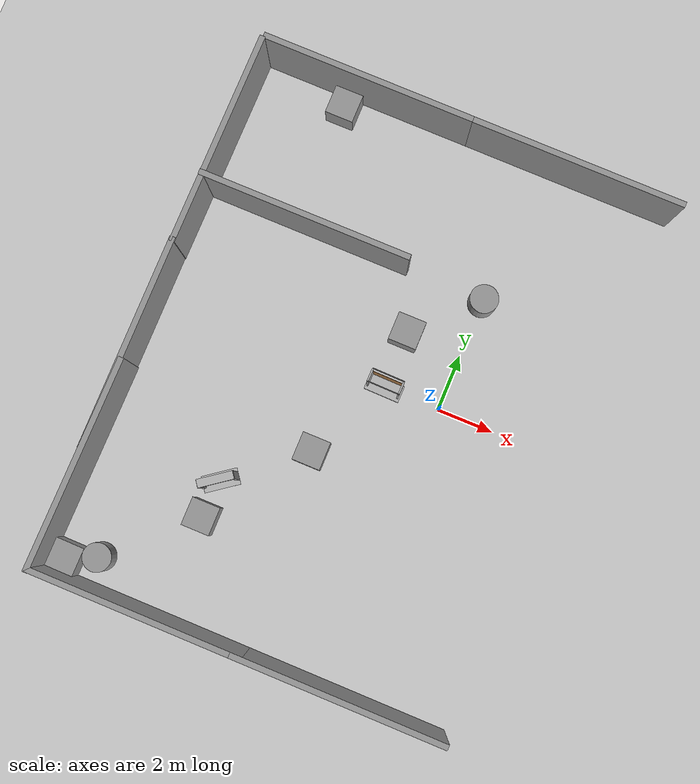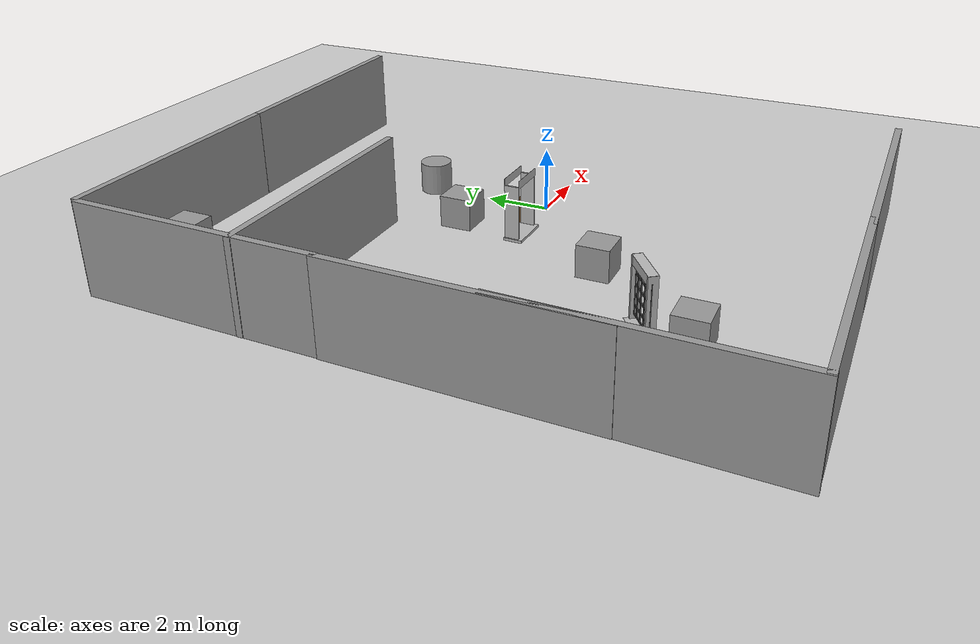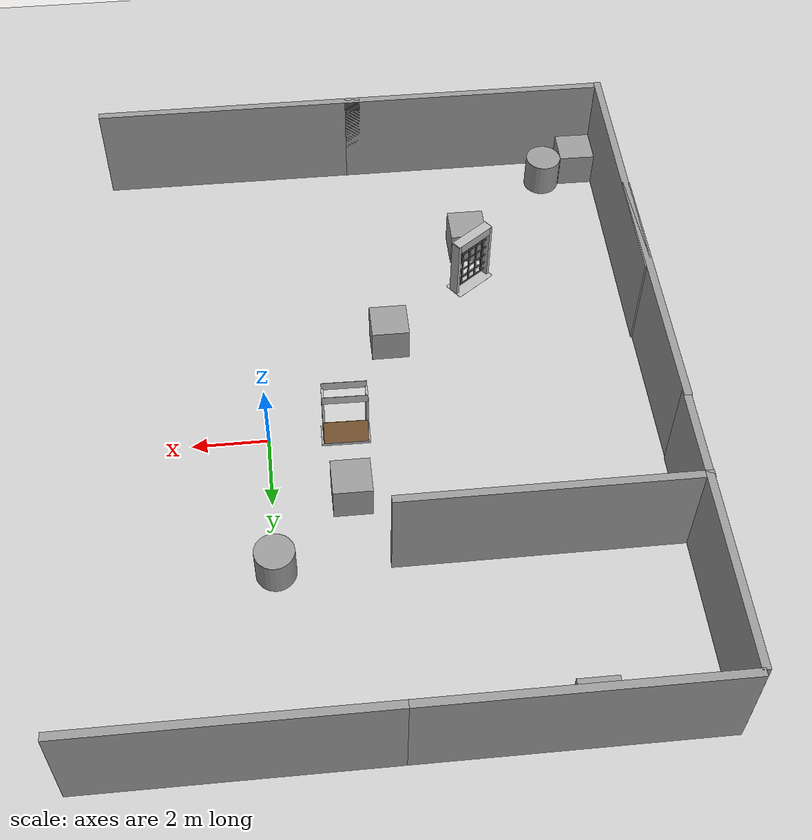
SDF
<sdf version="1.4">
 <world name="default">
  <model name="ground_plane">
   <static>1</static>
   <link name="link">
    <collision name="collision">
     <geometry><plane><normal>0 0 1</normal><size>100 100</size></plane></geometry>
     <surface><friction><ode><mu>100</mu><mu2>50</mu2></ode></friction></surface>
    </collision>
    <visual name="visual">
     <cast_shadows>0</cast_shadows>
     <geometry><plane><normal>0 0 1</normal><size>100 100</size></plane></geometry>
     <material>
      <script><uri>file://media/materials/scripts/gazebo.material</uri><name>Gazebo/Grey</name></script>
     </material>
    </visual>
    <velocity_decay><linear>0</linear><angular>0</angular></velocity_decay>
   </link>
  </model>
  <model name="grey_wall">
   <static>1</static>
   <link name="link">
    <pose>0 0 1.4 0 -0 0</pose>
    <collision name="collision"><geometry><box><size>7.5 0.2 2.8</size></box></geometry></collision>
    <visual name="visual">
     <cast_shadows>0</cast_shadows>
     <geometry><box><size>7.5 0.2 2.8</size></box></geometry>
     <material>
      <script>
       <uri>model://grey_wall/materials/scripts</uri>
       <uri>model://grey_wall/materials/textures</uri>
       <name>vrc/grey_wall</name>
      </script>
     </material>
    </visual>
    <velocity_decay><linear>0</linear><angular>0</angular></velocity_decay>
   </link>
   <pose>-6.37486 9.06322 0 0 -0 0</pose>
  </model>
  <model name="grey_wall_0">
   <static>1</static>
   <link name="link">
    <pose>0 0 1.4 0 -0 0</pose>
    <collision name="collision"><geometry><box><size>7.5 0.2 2.8</size></box></geometry></collision>
    <visual name="visual">
     <cast_shadows>0</cast_shadows>
     <geometry><box><size>7.5 0.2 2.8</size></box></geometry>
     <material>
      <script>
       <uri>model://grey_wall/materials/scripts</uri>
       <uri>model://grey_wall/materials/textures</uri>
       <name>vrc/grey_wall</name>
      </script>
     </material>
    </visual>
    <velocity_decay><linear>0</linear><angular>0</angular></velocity_decay>
   </link>
   <pose>1.12463 9.06218 0 0 -0 0</pose>
  </model>
  <model name="grey_wall_2">
   <static>1</static>
   <link name="link">
    <pose>0 0 1.4 0 -0 0</pose>
    <collision name="collision"><geometry><box><size>7.5 0.2 2.8</size></box></geometry></collision>
    <visual name="visual">
     <cast_shadows>0</cast_shadows>
     <geometry><box><size>7.5 0.2 2.8</size></box></geometry>
     <material>
      <script>
       <uri>model://grey_wall/materials/scripts</uri>
       <uri>model://grey_wall/materials/textures</uri>
       <name>vrc/grey_wall</name>
      </script>
     </material>
    </visual>
    <velocity_decay><linear>0</linear><angular>0</angular></velocity_decay>
   </link>
   <pose>-6.57172 -10 0 0 -0 0</pose>
  </model>
  <model name="grey_wall_3">
   <static>1</static>
   <link name="link">
    <pose>0 0 1.4 0 -0 0</pose>
    <collision name="collision"><geometry><box><size>7.5 0.2 2.8</size></box></geometry></collision>
    <visual name="visual">
     <cast_shadows>0</cast_shadows>
     <geometry><box><size>7.5 0.2 2.8</size></box></geometry>
     <material>
      <script>
       <uri>model://grey_wall/materials/scripts</uri>
       <uri>model://grey_wall/materials/textures</uri>
       <name>vrc/grey_wall</name>
      </script>
     </material>
    </visual>
    <velocity_decay><linear>0</linear><angular>0</angular></velocity_decay>
   </link>
   <pose>0.502464 -10 0 0 -0 0</pose>
  </model>
  <model name="grey_wall_8">
   <static>1</static>
   <link name="link">
    <pose>0 0 1.4 0 -0 0</pose>
    <collision name="collision"><geometry><box><size>7.5 0.2 2.8</size></box></geometry></collision>
    <visual name="visual">
     <cast_shadows>0</cast_shadows>
     <geometry><box><size>7.5 0.2 2.8</size></box></geometry>
     <material>
      <script>
       <uri>model://grey_wall/materials/scripts</uri>
       <uri>model://grey_wall/materials/textures</uri>
       <name>vrc/grey_wall</name>
      </script>
     </material>
    </visual>
    <velocity_decay><linear>0</linear><angular>0</angular></velocity_decay>
   </link>
   <pose>-10.1642 5.26629 0 0 0 -1.57839</pose>
  </model>
  <model name="grey_wall_9">
   <static>1</static>
   <link name="link">
    <pose>0 0 1.4 0 -0 0</pose>
    <collision name="collision"><geometry><box><size>7.5 0.2 2.8</size></box></geometry></collision>
    <visual name="visual">
     <cast_shadows>0</cast_shadows>
     <geometry><box><size>7.5 0.2 2.8</size></box></geometry>
     <material>
      <script>
       <uri>model://grey_wall/materials/scripts</uri>
       <uri>model://grey_wall/materials/textures</uri>
       <name>vrc/grey_wall</name>
      </script>
     </material>
    </visual>
    <velocity_decay><linear>0</linear><angular>0</angular></velocity_decay>
   </link>
   <pose>-10.2248 -2.07732 0 0 0 -1.57362</pose>
  </model>
  <model name="grey_wall_10">
   <static>1</static>
   <link name="link">
    <pose>0 0 1.4 0 -0 0</pose>
    <collision name="collision"><geometry><box><size>7.5 0.2 2.8</size></box></geometry></collision>
    <visual name="visual">
     <cast_shadows>0</cast_shadows>
     <geometry><box><size>7.5 0.2 2.8</size></box></geometry>
     <material>
      <script>
       <uri>model://grey_wall/materials/scripts</uri>
       <uri>model://grey_wall/materials/textures</uri>
       <name>vrc/grey_wall</name>
      </script>
     </material>
    </visual>
    <velocity_decay><linear>0</linear><angular>0</angular></velocity_decay>
   </link>
   <pose>-10.2268 -6.36026 -0 0 0 -1.58184</pose>
  </model>
  <model name="grey_wall_11">
   <static>1</static>
   <link name="link">
    <pose>0 0 1.4 0 -0 0</pose>
    <collision name="collision"><geometry><box><size>7.5 0.2 2.8</size></box></geometry></collision>
    <visual name="visual">
     <cast_shadows>0</cast_shadows>
     <geometry><box><size>7.5 0.2 2.8</size></box></geometry>
     <material>
      <script>
       <uri>model://grey_wall/materials/scripts</uri>
       <uri>model://grey_wall/materials/textures</uri>
       <name>vrc/grey_wall</name>
      </script>
     </material>
    </visual>
    <velocity_decay><linear>0</linear><angular>0</angular></velocity_decay>
   </link>
   <pose>-6.53777 4 0 0 -0 0</pose>
  </model>
  <model name="frc2016_drawbridge">
   <link name="base">
    <inertial>
     <mass>10</mass>
     <pose>0 0 1 0 -0 0</pose>
     <inertia><ixx>3.64907</ixx><ixy>0</ixy><ixz>0</ixz><iyy>4.67075</iyy><iyz>0</iyz><izz>1.66649</izz></inertia>
    </inertial>
    <visual name="platform">
     <pose>0 0 0.0425 0 -0 0</pose>
     <geometry><box><size>1.27 0.5969 0.085</size></box></geometry>
    </visual>
    <collision name="platform">
     <pose>0 0 0.0425 0 -0 0</pose>
     <geometry><box><size>1.27 0.5969 0.085</size></box></geometry>
    </collision>
    <visual name="right_wall">
     <pose>0.55879 0.04444 0.889 0 -0 0</pose>
     <geometry><box><size>0.05715 0.45698 1.77165</size></box></geometry>
    </visual>
    <collision name="right_wall">
     <pose>0.55879 0.04444 0.889 0 -0 0</pose>
     <geometry><box><size>0.05715 0.45698 1.77165</size></box></geometry>
    </collision>
    <visual name="left_wall">
     <pose>-0.55879 0.04444 0.889 0 -0 0</pose>
     <geometry><box><size>0.05715 0.45698 1.77165</size></box></geometry>
    </visual>
    <collision name="left_wall">
     <pose>-0.55879 0.04444 0.889 0 -0 0</pose>
     <geometry><box><size>0.05715 0.45698 1.77165</size></box></geometry>
    </collision>
    <visual name="front_upper_wall">
     <pose>0 0.27611 1.84286 0 -0 0</pose>
     <geometry><box><size>1.1557 0.006347 0.254</size></box></geometry>
    </visual>
    <collision name="front_upper_wall">
     <pose>0 0.27611 1.84286 0 -0 0</pose>
     <geometry><box><size>1.1557 0.006347 0.254</size></box></geometry>
    </collision>
    <visual name="back_upper_wall">
     <pose>0 -0.18722 1.84286 0 -0 0</pose>
     <geometry><box><size>1.1557 0.006347 0.254</size></box></geometry>
    </visual>
    <collision name="back_upper_wall">
     <pose>0 -0.18722 1.84286 0 -0 0</pose>
     <geometry><box><size>1.1557 0.006347 0.254</size></box></geometry>
    </collision>
    <velocity_decay><linear>0</linear><angular>0</angular></velocity_decay>
   </link>
   <link name="bridge">
    <pose>0 0.28245 0.50577 0 -0 0</pose>
    <inertial>
     <mass>2</mass>
     <pose>0 -0.28245 -0.50577 0 -0 0</pose>
     <inertia>
      <ixx>0.139361</ixx>
      <ixy>0</ixy>
      <ixz>0</ixz>
      <iyy>0.357088</iyy>
      <iyz>0</iyz>
      <izz>0.217741</izz>
     </inertia>
    </inertial>
    <visual name="visual">
     <geometry><box><size>1.14298 0.006347 0.9144</size></box></geometry>
     <material><script><name>Gazebo/WoodFloor</name><uri>__default__</uri></script></material>
    </visual>
    <collision name="collision"><geometry><box><size>1.14298 0.006347 0.9144</size></box></geometry></collision>
    <velocity_decay><linear>0</linear><angular>0</angular></velocity_decay>
   </link>
   <joint name="bridge_joint" type="revolute">
    <pose>0 0 -0.4172 0 -0 0</pose>
    <parent>base</parent>
    <child>bridge</child>
    <axis><xyz>1 0 0</xyz><limit><lower>-2</lower><upper>0</upper></limit></axis>
   </joint>
   <pose>-2.00157 -0.002943 -4e-06 -3e-06 4e-06 -0.01347</pose>
   <static>0</static>
  </model>
  <model name="frc2016_portcullis">
   <link name="base">
    <inertial>
     <mass>50</mass>
     <pose>0 0 1.02941 0 -0 0</pose>
     <inertia><ixx>3.81711</ixx><ixy>0</ixy><ixz>0</ixz><iyy>4.87698</iyy><iyz>0</iyz><izz>1.6283</izz></inertia>
    </inertial>
    <visual name="platform">
     <pose>0 0 0.07284 0 -0 0</pose>
     <geometry><box><size>1.27 0.5842 0.003175</size></box></geometry>
    </visual>
    <collision name="platform">
     <pose>0 0 0.07284 0 -0 0</pose>
     <geometry><box><size>1.27 0.5842 0.003175</size></box></geometry>
    </collision>
    <visual name="left_column">
     <pose>0.59284 0 0.99042 0 -0 0</pose>
     <geometry><box><size>0.08375 0.28575 1.83198</size></box></geometry>
    </visual>
    <collision name="left_column">
     <pose>0.59284 0 0.99042 0 -0 0</pose>
     <geometry><box><size>0.08375 0.28575 1.83198</size></box></geometry>
    </collision>
    <visual name="right_column">
     <pose>-0.57759 0 0.99042 0 -0 0</pose>
     <geometry><box><size>0.08375 0.28575 1.83198</size></box></geometry>
    </visual>
    <collision name="right_column">
     <pose>-0.57759 0 0.99042 0 -0 0</pose>
     <geometry><box><size>0.08375 0.28575 1.83198</size></box></geometry>
    </collision>
    <visual name="top">
     <pose>-0.00034 0 1.77722 0 -0 0</pose>
     <geometry><box><size>1.22962 0.28575 0.26657</size></box></geometry>
    </visual>
    <collision name="top">
     <pose>-0.00034 0 1.77722 0 -0 0</pose>
     <geometry><box><size>1.22962 0.28575 0.26657</size></box></geometry>
    </collision>
    <visual name="castor1">
     <pose>-0.45651 -0.16234 0.03272 0 -0 0</pose>
     <geometry><sphere><radius>0.03272</radius></sphere></geometry>
    </visual>
    <collision name="castor1">
     <pose>-0.45651 -0.16234 0.03272 0 -0 0</pose>
     <geometry><sphere><radius>0.03272</radius></sphere></geometry>
    </collision>
    <visual name="castor2">
     <pose>-0.27883 0.21836 0.03272 0 -0 0</pose>
     <geometry><sphere><radius>0.03272</radius></sphere></geometry>
    </visual>
    <collision name="castor2">
     <pose>-0.27883 0.21836 0.03272 0 -0 0</pose>
     <geometry><sphere><radius>0.03272</radius></sphere></geometry>
    </collision>
    <visual name="castor3">
     <pose>0.28083 0.21906 0.03272 0 -0 0</pose>
     <geometry><sphere><radius>0.03272</radius></sphere></geometry>
    </visual>
    <collision name="castor3">
     <pose>0.28083 0.21906 0.03272 0 -0 0</pose>
     <geometry><sphere><radius>0.03272</radius></sphere></geometry>
    </collision>
    <visual name="castor4">
     <pose>0.45871 -0.16186 0.03272 0 -0 0</pose>
     <geometry><sphere><radius>0.03272</radius></sphere></geometry>
    </visual>
    <collision name="castor4">
     <pose>0.45871 -0.16186 0.03272 0 -0 0</pose>
     <geometry><sphere><radius>0.03272</radius></sphere></geometry>
    </collision>
    <velocity_decay><linear>0</linear><angular>0</angular></velocity_decay>
   </link>
   <link name="gate">
    <pose>-0.0287 0.02885 0.93327 0 -0 0</pose>
    <inertial>
     <mass>2</mass>
     <inertia><ixx>3.81711</ixx><ixy>0</ixy><ixz>0</ixz><iyy>4.87698</iyy><iyz>0</iyz><izz>1.6283</izz></inertia>
    </inertial>
    <collision name="collision"><geometry><box><size>1.1938 0.02496 1.45732</size></box></geometry></collision>
    <visual name="horz_1">
     <pose>0 0 -0.70326 0 -0 0</pose>
     <geometry><box><size>1.1938 0.02496 0.0508</size></box></geometry>
     <material><ambient>0.4 0.4 0.4 1</ambient><diffuse>0.4 0.4 0.4 1</diffuse></material>
    </visual>
    <visual name="horz_2">
     <pose>0 0 -0.44926 0 -0 0</pose>
     <geometry><box><size>1.1938 0.02496 0.0508</size></box></geometry>
     <material><ambient>0.4 0.4 0.4 1</ambient><diffuse>0.4 0.4 0.4 1</diffuse></material>
    </visual>
    <visual name="horz_3">
     <pose>0 0 -0.14517 0 -0 0</pose>
     <geometry><box><size>1.1938 0.02496 0.0508</size></box></geometry>
     <material><ambient>0.4 0.4 0.4 1</ambient><diffuse>0.4 0.4 0.4 1</diffuse></material>
    </visual>
    <visual name="horz_4">
     <pose>0 0 0.16034 0 -0 0</pose>
     <geometry><box><size>1.1938 0.02496 0.0508</size></box></geometry>
     <material><ambient>0.4 0.4 0.4 1</ambient><diffuse>0.4 0.4 0.4 1</diffuse></material>
    </visual>
    <visual name="horz_5">
     <pose>0 0 0.46514 0 -0 0</pose>
     <geometry><box><size>1.1938 0.02496 0.0508</size></box></geometry>
     <material><ambient>0.4 0.4 0.4 1</ambient><diffuse>0.4 0.4 0.4 1</diffuse></material>
    </visual>
    <visual name="horz_6">
     <pose>0 0 0.72994 0 -0 0</pose>
     <geometry><box><size>1.1938 0.02496 0.0508</size></box></geometry>
     <material><ambient>0.4 0.4 0.4 1</ambient><diffuse>0.4 0.4 0.4 1</diffuse></material>
    </visual>
    <visual name="vert_1">
     <pose>-0.58448 0 0 0 -0 0</pose>
     <geometry><box><size>0.02495 0.02496 1.45732</size></box></geometry>
     <material><ambient>0.4 0.4 0.4 1</ambient><diffuse>0.4 0.4 0.4 1</diffuse></material>
    </visual>
    <visual name="vert_2">
     <pose>-0.38128 0 0 0 -0 0</pose>
     <geometry><box><size>0.0508 0.02496 1.45732</size></box></geometry>
     <material><ambient>0.4 0.4 0.4 1</ambient><diffuse>0.4 0.4 0.4 1</diffuse></material>
    </visual>
    <visual name="vert_3">
     <pose>-0.12728 0 0 0 -0 0</pose>
     <geometry><box><size>0.0508 0.02496 1.45732</size></box></geometry>
     <material><ambient>0.4 0.4 0.4 1</ambient><diffuse>0.4 0.4 0.4 1</diffuse></material>
    </visual>
    <visual name="vert_4">
     <pose>0.12672 0 0 0 -0 0</pose>
     <geometry><box><size>0.0508 0.02496 1.45732</size></box></geometry>
     <material><ambient>0.4 0.4 0.4 1</ambient><diffuse>0.4 0.4 0.4 1</diffuse></material>
    </visual>
    <visual name="vert_5">
     <pose>0.38072 0 0 0 -0 0</pose>
     <geometry><box><size>0.0508 0.02496 1.45732</size></box></geometry>
     <material><ambient>0.4 0.4 0.4 1</ambient><diffuse>0.4 0.4 0.4 1</diffuse></material>
    </visual>
    <visual name="vert_6">
     <pose>0.58392 0 0 0 -0 0</pose>
     <geometry><box><size>0.02495 0.02496 1.45732</size></box></geometry>
     <material><ambient>0.4 0.4 0.4 1</ambient><diffuse>0.4 0.4 0.4 1</diffuse></material>
    </visual>
    <velocity_decay><linear>0</linear><angular>0</angular></velocity_decay>
   </link>
   <joint name="joint" type="prismatic">
    <parent>base</parent>
    <child>gate</child>
    <axis><xyz>0 0 1</xyz><limit><lower>0</lower><upper>1</upper></limit></axis>
   </joint>
   <pose>-5.9387 -5.08843 -1e-06 -3e-06 1e-06 0.636302</pose>
   <static>0</static>
  </model>
  <model name="unit_box_1">
   <pose>-7 8.45126 0.5 0 -0 0</pose>
   <link name="link">
    <inertial>
     <mass>1</mass>
     <inertia><ixx>1</ixx><ixy>0</ixy><ixz>0</ixz><iyy>1</iyy><iyz>0</iyz><izz>1</izz></inertia>
    </inertial>
    <collision name="collision"><geometry><box><size>1 1 1</size></box></geometry></collision>
    <visual name="visual">
     <geometry><box><size>1 1 1</size></box></geometry>
     <material>
      <script><uri>file://media/materials/scripts/gazebo.material</uri><name>Gazebo/Grey</name></script>
     </material>
    </visual>
    <velocity_decay><linear>0</linear><angular>0</angular></velocity_decay>
   </link>
   <static>0</static>
  </model>
  <model name="unit_box_1_0">
   <pose>-2 2 0.5 0 -0 0</pose>
   <link name="link">
    <inertial>
     <mass>1</mass>
     <inertia><ixx>1</ixx><ixy>0</ixy><ixz>0</ixz><iyy>1</iyy><iyz>0</iyz><izz>1</izz></inertia>
    </inertial>
    <collision name="collision"><geometry><box><size>1 1 1</size></box></geometry></collision>
    <visual name="visual">
     <geometry><box><size>1 1 1</size></box></geometry>
     <material>
      <script><uri>file://media/materials/scripts/gazebo.material</uri><name>Gazebo/Grey</name></script>
     </material>
    </visual>
    <velocity_decay><linear>0</linear><angular>0</angular></velocity_decay>
   </link>
   <static>0</static>
  </model>
  <model name="unit_box_2_0">
   <pose>-6 -6.42643 0.5 0 -0 0</pose>
   <link name="link">
    <inertial>
     <mass>1</mass>
     <inertia><ixx>1</ixx><ixy>0</ixy><ixz>0</ixz><iyy>1</iyy><iyz>0</iyz><izz>1</izz></inertia>
    </inertial>
    <collision name="collision"><geometry><box><size>1 1 1</size></box></geometry></collision>
    <visual name="visual">
     <geometry><box><size>1 1 1</size></box></geometry>
     <material>
      <script><uri>file://media/materials/scripts/gazebo.material</uri><name>Gazebo/Grey</name></script>
     </material>
    </visual>
    <velocity_decay><linear>0</linear><angular>0</angular></velocity_decay>
   </link>
   <static>0</static>
  </model>
  <model name="unit_cylinder_4">
   <pose>-0 4 0.499992 -1e-06 -0 0</pose>
   <link name="link">
    <inertial>
     <mass>1</mass>
     <inertia><ixx>1</ixx><ixy>0</ixy><ixz>0</ixz><iyy>1</iyy><iyz>0</iyz><izz>1</izz></inertia>
    </inertial>
    <collision name="collision">
     <geometry><cylinder><radius>0.5</radius><length>1</length></cylinder></geometry>
    </collision>
    <visual name="visual">
     <geometry><cylinder><radius>0.5</radius><length>1</length></cylinder></geometry>
     <material>
      <script><uri>file://media/materials/scripts/gazebo.material</uri><name>Gazebo/Grey</name></script>
     </material>
    </visual>
    <velocity_decay><linear>0</linear><angular>0</angular></velocity_decay>
   </link>
   <static>0</static>
  </model>
  <model name="unit_box_6">
   <pose>-3.43088 -3 0.5 0 -0 0</pose>
   <link name="link">
    <inertial>
     <mass>1</mass>
     <inertia><ixx>1</ixx><ixy>0</ixy><ixz>0</ixz><iyy>1</iyy><iyz>0</iyz><izz>1</izz></inertia>
    </inertial>
    <collision name="collision"><geometry><box><size>1 1 1</size></box></geometry></collision>
    <visual name="visual">
     <geometry><box><size>1 1 1</size></box></geometry>
     <material>
      <script><uri>file://media/materials/scripts/gazebo.material</uri><name>Gazebo/Grey</name></script>
     </material>
    </visual>
    <velocity_decay><linear>0</linear><angular>0</angular></velocity_decay>
   </link>
   <static>0</static>
  </model>
  <model name="unit_box_7">
   <pose>-9.65855 -9.39624 0.5 0 0 -0.007544</pose>
   <link name="link">
    <inertial>
     <mass>1</mass>
     <inertia><ixx>1</ixx><ixy>0</ixy><ixz>0</ixz><iyy>1</iyy><iyz>0</iyz><izz>1</izz></inertia>
    </inertial>
    <collision name="collision"><geometry><box><size>1 1 1</size></box></geometry></collision>
    <visual name="visual">
     <geometry><box><size>1 1 1</size></box></geometry>
     <material>
      <script><uri>file://media/materials/scripts/gazebo.material</uri><name>Gazebo/Grey</name></script>
     </material>
    </visual>
    <velocity_decay><linear>0</linear><angular>0</angular></velocity_decay>
   </link>
   <static>0</static>
  </model>
  <model name="unit_cylinder_5">
   <pose>-8.65243 -9.00172 0.499996 -1e-06 1e-06 -0.000389</pose>
   <link name="link">
    <inertial>
     <mass>1</mass>
     <inertia><ixx>1</ixx><ixy>0</ixy><ixz>0</ixz><iyy>1</iyy><iyz>0</iyz><izz>1</izz></inertia>
    </inertial>
    <collision name="collision">
     <geometry><cylinder><radius>0.5</radius><length>1</length></cylinder></geometry>
    </collision>
    <visual name="visual">
     <geometry><cylinder><radius>0.5</radius><length>1</length></cylinder></geometry>
     <material>
      <script><uri>file://media/materials/scripts/gazebo.material</uri><name>Gazebo/Grey</name></script>
     </material>
    </visual>
    <velocity_decay><linear>0</linear><angular>0</angular></velocity_decay>
   </link>
   <static>0</static>
  </model>
 </world>
</sdf>
